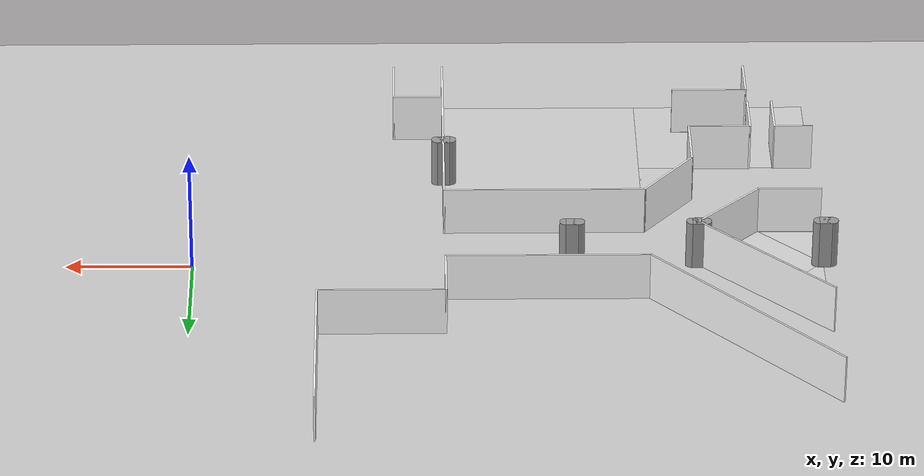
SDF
<sdf version="1.6">
 <world name="default">
  <model name="ground_plane">
   <static>1</static>
   <link name="link">
    <collision name="collision">
     <geometry><plane><normal>0 0 1</normal><size>100 100</size></plane></geometry>
     <surface><friction><ode><mu>100</mu><mu2>50</mu2></ode></friction></surface>
    </collision>
    <visual name="visual">
     <cast_shadows>0</cast_shadows>
     <geometry><plane><normal>0 0 1</normal><size>100 100</size></plane></geometry>
     <material>
      <script><uri>file://media/materials/scripts/gazebo.material</uri><name>Gazebo/Grey</name></script>
     </material>
    </visual>
   </link>
  </model>
  <model name="restroom_wall">
   <pose>-25 -15 0 0 -0 0</pose>
   <link name="Wall_11">
    <collision name="Wall_11_Collision">
     <geometry><box><size>4.15 0.15 4</size></box></geometry>
     <pose>0 0 2 0 -0 0</pose>
    </collision>
    <visual name="Wall_11_Visual">
     <pose>0 0 2 0 -0 0</pose>
     <geometry><box><size>4.15 0.15 4</size></box></geometry>
     <material>
      <script>
       <uri>file://media/materials/scripts/gray_tile_10.material</uri>
       <name>gray_tile_10/Diffuse</name>
      </script>
      <ambient>1 1 1 1</ambient>
     </material>
     <meta><layer>0</layer></meta>
    </visual>
    <pose>-19.9625 -2.01521 0 0 -0 -1.5708</pose>
   </link>
   <link name="Wall_13">
    <collision name="Wall_13_Collision">
     <geometry><box><size>4.15 0.15 4</size></box></geometry>
     <pose>0 0 2 0 -0 0</pose>
    </collision>
    <visual name="Wall_13_Visual">
     <pose>0 0 2 0 -0 0</pose>
     <geometry><box><size>4.15 0.15 4</size></box></geometry>
     <material>
      <script>
       <uri>file://media/materials/scripts/gray_tile_10.material</uri>
       <name>gray_tile_10/Diffuse</name>
      </script>
      <ambient>1 1 1 1</ambient>
     </material>
     <meta><layer>0</layer></meta>
    </visual>
    <pose>-19.9625 -8.01521 0 0 -0 1.5708</pose>
   </link>
   <link name="Wall_14">
    <collision name="Wall_14_Collision">
     <geometry><box><size>6.15 0.15 4</size></box></geometry>
     <pose>0 0 2 0 -0 0</pose>
    </collision>
    <visual name="Wall_14_Visual">
     <pose>0 0 2 0 -0 0</pose>
     <geometry><box><size>6.15 0.15 4</size></box></geometry>
     <material>
      <script>
       <uri>file://media/materials/scripts/gray_tile_10.material</uri>
       <name>gray_tile_10/Diffuse</name>
      </script>
      <ambient>1 1 1 1</ambient>
     </material>
     <meta><layer>0</layer></meta>
    </visual>
    <pose>-16.9625 -6.01521 0 0 -0 0</pose>
   </link>
   <link name="Wall_16">
    <collision name="Wall_16_Collision">
     <geometry><box><size>4.15 0.15 4</size></box></geometry>
     <pose>0 0 2 0 -0 0</pose>
    </collision>
    <visual name="Wall_16_Visual">
     <pose>0 0 2 0 -0 0</pose>
     <geometry><box><size>4.15 0.15 4</size></box></geometry>
     <material>
      <script>
       <uri>file://media/materials/scripts/gray_tile_10.material</uri>
       <name>gray_tile_10/Diffuse</name>
      </script>
      <ambient>1 1 1 1</ambient>
     </material>
     <meta><layer>0</layer></meta>
    </visual>
    <pose>7.0375 -5.01521 0 0 -0 0</pose>
   </link>
   <link name="Wall_17">
    <collision name="Wall_17_Collision">
     <geometry><box><size>5.15 0.15 4</size></box></geometry>
     <pose>0 0 2 0 -0 0</pose>
    </collision>
    <visual name="Wall_17_Visual">
     <pose>0 0 2 0 -0 0</pose>
     <geometry><box><size>5.15 0.15 4</size></box></geometry>
     <material>
      <script>
       <uri>file://media/materials/scripts/gray_tile_10.material</uri>
       <name>gray_tile_10/Diffuse</name>
      </script>
      <ambient>1 1 1 1</ambient>
     </material>
     <meta><layer>0</layer></meta>
    </visual>
    <pose>9.0375 -7.51521 0 0 -0 -1.5708</pose>
   </link>
   <link name="Wall_2">
    <pose>-19.9625 -0.015208 0 0 -0 0</pose>
    <visual name="Wall_2_Visual_0">
     <pose>-3.5375 0 2 0 -0 0</pose>
     <geometry><box><size>3.075 0.15 4</size></box></geometry>
     <material>
      <script>
       <uri>file://media/materials/scripts/gray_tile_10.material</uri>
       <name>gray_tile_10/Diffuse</name>
      </script>
      <ambient>1 1 1 1</ambient>
     </material>
     <meta><layer>0</layer></meta>
    </visual>
    <collision name="Wall_2_Collision_0">
     <geometry><box><size>3.075 0.15 4</size></box></geometry>
     <pose>-3.5375 0 2 0 -0 0</pose>
    </collision>
    <visual name="Wall_2_Visual_1">
     <pose>2.5375 0 2 0 -0 0</pose>
     <geometry><box><size>5.075 0.15 4</size></box></geometry>
     <material>
      <script>
       <uri>file://media/materials/scripts/gray_tile_10.material</uri>
       <name>gray_tile_10/Diffuse</name>
      </script>
      <ambient>1 1 1 1</ambient>
     </material>
     <meta><layer>0</layer></meta>
    </visual>
    <collision name="Wall_2_Collision_1">
     <geometry><box><size>5.075 0.15 4</size></box></geometry>
     <pose>2.5375 0 2 0 -0 0</pose>
    </collision>
   </link>
   <link name="Wall_3">
    <collision name="Wall_3_Collision">
     <geometry><box><size>5.15 0.15 4</size></box></geometry>
     <pose>0 0 2 0 -0 0</pose>
    </collision>
    <visual name="Wall_3_Visual">
     <pose>0 0 2 0 -0 0</pose>
     <geometry><box><size>5.15 0.15 4</size></box></geometry>
     <material>
      <script>
       <uri>file://media/materials/scripts/gray_tile_10.material</uri>
       <name>gray_tile_10/Diffuse</name>
      </script>
      <ambient>1 1 1 1</ambient>
     </material>
     <meta><layer>0</layer></meta>
    </visual>
    <pose>-14.9625 2.48479 0 0 -0 1.5708</pose>
   </link>
   <link name="Wall_4">
    <collision name="Wall_4_Collision">
     <geometry><box><size>6.55312 0.15 4</size></box></geometry>
     <pose>0 0 2 0 -0 0</pose>
    </collision>
    <visual name="Wall_4_Visual">
     <pose>0 0 2 0 -0 0</pose>
     <geometry><box><size>6.55312 0.15 4</size></box></geometry>
     <material>
      <script>
       <uri>file://media/materials/scripts/gray_tile_10.material</uri>
       <name>gray_tile_10/Diffuse</name>
      </script>
      <ambient>1 1 1 1</ambient>
     </material>
     <meta><layer>0</layer></meta>
    </visual>
    <pose>-12.9625 7.48479 0 0 -0 0.896055</pose>
   </link>
   <link name="Wall_5">
    <collision name="Wall_5_Collision">
     <geometry><box><size>16.15 0.15 4</size></box></geometry>
     <pose>0 0 2 0 -0 0</pose>
    </collision>
    <visual name="Wall_5_Visual">
     <pose>0 0 2 0 -0 0</pose>
     <geometry><box><size>16.15 0.15 4</size></box></geometry>
     <material>
      <script>
       <uri>file://media/materials/scripts/gray_tile_10.material</uri>
       <name>gray_tile_10/Diffuse</name>
      </script>
      <ambient>1 1 1 1</ambient>
     </material>
     <meta><layer>0</layer></meta>
    </visual>
    <pose>-2.9625 9.98479 0 0 -0 0</pose>
   </link>
   <link name="Wall_6">
    <collision name="Wall_6_Collision">
     <geometry><box><size>20.15 0.15 4</size></box></geometry>
     <pose>0 0 2 0 -0 0</pose>
    </collision>
    <visual name="Wall_6_Visual">
     <pose>0 0 2 0 -0 0</pose>
     <geometry><box><size>20.15 0.15 4</size></box></geometry>
     <material>
      <script>
       <uri>file://media/materials/scripts/gray_tile_10.material</uri>
       <name>gray_tile_10/Diffuse</name>
      </script>
      <ambient>1 1 1 1</ambient>
     </material>
     <meta><layer>0</layer></meta>
    </visual>
    <pose>5.0375 -0.015208 0 0 -0 -1.5708</pose>
   </link>
   <link name="Wall_9">
    <collision name="Wall_9_Collision">
     <geometry><box><size>4.15 0.15 4</size></box></geometry>
     <pose>0 0 2 0 -0 0</pose>
    </collision>
    <visual name="Wall_9_Visual">
     <pose>0 0 2 0 -0 0</pose>
     <geometry><box><size>4.15 0.15 4</size></box></geometry>
     <material>
      <script>
       <uri>file://media/materials/scripts/gray_tile_10.material</uri>
       <name>gray_tile_10/Diffuse</name>
      </script>
      <ambient>1 1 1 1</ambient>
     </material>
     <meta><layer>0</layer></meta>
    </visual>
    <pose>-21.9455 -2.01521 0 0 -0 -1.5708</pose>
   </link>
   <static>1</static>
  </model>
  <model name="pillar">
   <link name="link_0">
    <inertial>
     <mass>1</mass>
     <inertia>
      <ixx>0.166667</ixx>
      <ixy>0</ixy>
      <ixz>0</ixz>
      <iyy>0.166667</iyy>
      <iyz>0</iyz>
      <izz>0.166667</izz>
     </inertia>
    </inertial>
    <kinematic>1</kinematic>
    <visual name="visual">
     <geometry><box><size>1 1 4</size></box></geometry>
     <material>
      <lighting>1</lighting>
      <script><uri>file://media/materials/scripts/gazebo.material</uri><name>Gazebo/Grey</name></script>
      <shader type="pixel"><normal_map>__default__</normal_map></shader>
      <ambient>0.3 0.3 0.3 1</ambient>
      <diffuse>0.7 0.7 0.7 1</diffuse>
      <specular>0.01 0.01 0.01 1</specular>
      <emissive>0 0 0 1</emissive>
     </material>
    </visual>
    <collision name="collision">
     <geometry><box><size>1 1 4</size></box></geometry>
     <surface>
      <friction>
       <ode><mu>1</mu><mu2>1</mu2><fdir1>0 0 0</fdir1><slip1>0</slip1><slip2>0</slip2></ode>
       <torsional>
        <coefficient>1</coefficient>
        <patch_radius>0</patch_radius>
        <surface_radius>0</surface_radius>
        <use_patch_radius>1</use_patch_radius>
        <ode><slip>0</slip></ode>
       </torsional>
      </friction>
      <bounce><restitution_coefficient>0</restitution_coefficient><threshold>1e+06</threshold></bounce>
      <contact>
       <collide_without_contact>0</collide_without_contact>
       <collide_without_contact_bitmask>1</collide_without_contact_bitmask>
       <collide_bitmask>1</collide_bitmask>
       <ode>
        <soft_cfm>0</soft_cfm>
        <soft_erp>0.2</soft_erp>
        <kp>1e+13</kp>
        <kd>1</kd>
        <max_vel>0.01</max_vel>
        <min_depth>0</min_depth>
       </ode>
       <bullet>
        <split_impulse>1</split_impulse>
        <split_impulse_penetration_threshold>-0.01</split_impulse_penetration_threshold>
        <soft_cfm>0</soft_cfm>
        <soft_erp>0.2</soft_erp>
        <kp>1e+13</kp>
        <kd>1</kd>
       </bullet>
      </contact>
     </surface>
    </collision>
   </link>
   <link name="link_1">
    <inertial>
     <mass>1</mass>
     <inertia><ixx>0.145833</ixx><ixy>0</ixy><ixz>0</ixz><iyy>0.145833</iyy><iyz>0</iyz><izz>0.125</izz></inertia>
    </inertial>
    <pose>-0.5 0 0 0 -0 0</pose>
    <kinematic>1</kinematic>
    <visual name="visual">
     <geometry><cylinder><radius>0.5</radius><length>4</length></cylinder></geometry>
     <material>
      <lighting>1</lighting>
      <script><uri>file://media/materials/scripts/gazebo.material</uri><name>Gazebo/Grey</name></script>
      <shader type="pixel"><normal_map>__default__</normal_map></shader>
      <ambient>0.3 0.3 0.3 1</ambient>
      <diffuse>0.7 0.7 0.7 1</diffuse>
      <specular>0.01 0.01 0.01 1</specular>
      <emissive>0 0 0 1</emissive>
     </material>
    </visual>
    <collision name="collision">
     <geometry><cylinder><radius>0.5</radius><length>4</length></cylinder></geometry>
     <surface>
      <friction>
       <ode><mu>1</mu><mu2>1</mu2><fdir1>0 0 0</fdir1><slip1>0</slip1><slip2>0</slip2></ode>
       <torsional>
        <coefficient>1</coefficient>
        <patch_radius>0</patch_radius>
        <surface_radius>0</surface_radius>
        <use_patch_radius>1</use_patch_radius>
        <ode><slip>0</slip></ode>
       </torsional>
      </friction>
      <bounce><restitution_coefficient>0</restitution_coefficient><threshold>1e+06</threshold></bounce>
      <contact>
       <collide_without_contact>0</collide_without_contact>
       <collide_without_contact_bitmask>1</collide_without_contact_bitmask>
       <collide_bitmask>1</collide_bitmask>
       <ode>
        <soft_cfm>0</soft_cfm>
        <soft_erp>0.2</soft_erp>
        <kp>1e+13</kp>
        <kd>1</kd>
        <max_vel>0.01</max_vel>
        <min_depth>0</min_depth>
       </ode>
       <bullet>
        <split_impulse>1</split_impulse>
        <split_impulse_penetration_threshold>-0.01</split_impulse_penetration_threshold>
        <soft_cfm>0</soft_cfm>
        <soft_erp>0.2</soft_erp>
        <kp>1e+13</kp>
        <kd>1</kd>
       </bullet>
      </contact>
     </surface>
    </collision>
   </link>
   <link name="link_2">
    <inertial>
     <mass>1</mass>
     <inertia><ixx>0.145833</ixx><ixy>0</ixy><ixz>0</ixz><iyy>0.145833</iyy><iyz>0</iyz><izz>0.125</izz></inertia>
    </inertial>
    <pose>0.5 0 0 0 -0 0</pose>
    <kinematic>1</kinematic>
    <visual name="visual">
     <geometry><cylinder><radius>0.5</radius><length>4</length></cylinder></geometry>
     <material>
      <lighting>1</lighting>
      <script><uri>file://media/materials/scripts/gazebo.material</uri><name>Gazebo/Grey</name></script>
      <shader type="pixel"><normal_map>__default__</normal_map></shader>
      <ambient>0.3 0.3 0.3 1</ambient>
      <diffuse>0.7 0.7 0.7 1</diffuse>
      <specular>0.01 0.01 0.01 1</specular>
      <emissive>0 0 0 1</emissive>
     </material>
    </visual>
    <collision name="collision">
     <geometry><cylinder><radius>0.5</radius><length>4</length></cylinder></geometry>
     <surface>
      <friction>
       <ode><mu>1</mu><mu2>1</mu2><fdir1>0 0 0</fdir1><slip1>0</slip1><slip2>0</slip2></ode>
       <torsional>
        <coefficient>1</coefficient>
        <patch_radius>0</patch_radius>
        <surface_radius>0</surface_radius>
        <use_patch_radius>1</use_patch_radius>
        <ode><slip>0</slip></ode>
       </torsional>
      </friction>
      <bounce><restitution_coefficient>0</restitution_coefficient><threshold>1e+06</threshold></bounce>
      <contact>
       <collide_without_contact>0</collide_without_contact>
       <collide_without_contact_bitmask>1</collide_without_contact_bitmask>
       <collide_bitmask>1</collide_bitmask>
       <ode>
        <soft_cfm>0</soft_cfm>
        <soft_erp>0.2</soft_erp>
        <kp>1e+13</kp>
        <kd>1</kd>
        <max_vel>0.01</max_vel>
        <min_depth>0</min_depth>
       </ode>
       <bullet>
        <split_impulse>1</split_impulse>
        <split_impulse_penetration_threshold>-0.01</split_impulse_penetration_threshold>
        <soft_cfm>0</soft_cfm>
        <soft_erp>0.2</soft_erp>
        <kp>1e+13</kp>
        <kd>1</kd>
       </bullet>
      </contact>
     </surface>
    </collision>
   </link>
   <static>1</static>
   <pose>-20 -13 2 0 -0 0</pose>
  </model>
  <model name="pillar_clone_6_clone">
   <link name="link_0">
    <inertial>
     <mass>1</mass>
     <inertia>
      <ixx>0.166667</ixx>
      <ixy>0</ixy>
      <ixz>0</ixz>
      <iyy>0.166667</iyy>
      <iyz>0</iyz>
      <izz>0.166667</izz>
     </inertia>
    </inertial>
    <kinematic>1</kinematic>
    <visual name="visual">
     <geometry><box><size>1 1 4</size></box></geometry>
     <material>
      <lighting>1</lighting>
      <script><uri>file://media/materials/scripts/gazebo.material</uri><name>Gazebo/Grey</name></script>
      <shader type="pixel"><normal_map>__default__</normal_map></shader>
      <ambient>0.3 0.3 0.3 1</ambient>
      <diffuse>0.7 0.7 0.7 1</diffuse>
      <specular>0.01 0.01 0.01 1</specular>
      <emissive>0 0 0 1</emissive>
     </material>
    </visual>
    <collision name="collision">
     <geometry><box><size>1 1 4</size></box></geometry>
     <surface>
      <friction>
       <ode><mu>1</mu><mu2>1</mu2><fdir1>0 0 0</fdir1><slip1>0</slip1><slip2>0</slip2></ode>
       <torsional>
        <coefficient>1</coefficient>
        <patch_radius>0</patch_radius>
        <surface_radius>0</surface_radius>
        <use_patch_radius>1</use_patch_radius>
        <ode><slip>0</slip></ode>
       </torsional>
      </friction>
      <bounce><restitution_coefficient>0</restitution_coefficient><threshold>1e+06</threshold></bounce>
      <contact>
       <collide_without_contact>0</collide_without_contact>
       <collide_without_contact_bitmask>1</collide_without_contact_bitmask>
       <collide_bitmask>1</collide_bitmask>
       <ode>
        <soft_cfm>0</soft_cfm>
        <soft_erp>0.2</soft_erp>
        <kp>1e+13</kp>
        <kd>1</kd>
        <max_vel>0.01</max_vel>
        <min_depth>0</min_depth>
       </ode>
       <bullet>
        <split_impulse>1</split_impulse>
        <split_impulse_penetration_threshold>-0.01</split_impulse_penetration_threshold>
        <soft_cfm>0</soft_cfm>
        <soft_erp>0.2</soft_erp>
        <kp>1e+13</kp>
        <kd>1</kd>
       </bullet>
      </contact>
     </surface>
    </collision>
   </link>
   <link name="link_1">
    <inertial>
     <mass>1</mass>
     <inertia><ixx>0.145833</ixx><ixy>0</ixy><ixz>0</ixz><iyy>0.145833</iyy><iyz>0</iyz><izz>0.125</izz></inertia>
    </inertial>
    <pose>-0.5 0 0 0 -0 0</pose>
    <kinematic>1</kinematic>
    <visual name="visual">
     <geometry><cylinder><radius>0.5</radius><length>4</length></cylinder></geometry>
     <material>
      <lighting>1</lighting>
      <script><uri>file://media/materials/scripts/gazebo.material</uri><name>Gazebo/Grey</name></script>
      <shader type="pixel"><normal_map>__default__</normal_map></shader>
      <ambient>0.3 0.3 0.3 1</ambient>
      <diffuse>0.7 0.7 0.7 1</diffuse>
      <specular>0.01 0.01 0.01 1</specular>
      <emissive>0 0 0 1</emissive>
     </material>
    </visual>
    <collision name="collision">
     <geometry><cylinder><radius>0.5</radius><length>4</length></cylinder></geometry>
     <surface>
      <friction>
       <ode><mu>1</mu><mu2>1</mu2><fdir1>0 0 0</fdir1><slip1>0</slip1><slip2>0</slip2></ode>
       <torsional>
        <coefficient>1</coefficient>
        <patch_radius>0</patch_radius>
        <surface_radius>0</surface_radius>
        <use_patch_radius>1</use_patch_radius>
        <ode><slip>0</slip></ode>
       </torsional>
      </friction>
      <bounce><restitution_coefficient>0</restitution_coefficient><threshold>1e+06</threshold></bounce>
      <contact>
       <collide_without_contact>0</collide_without_contact>
       <collide_without_contact_bitmask>1</collide_without_contact_bitmask>
       <collide_bitmask>1</collide_bitmask>
       <ode>
        <soft_cfm>0</soft_cfm>
        <soft_erp>0.2</soft_erp>
        <kp>1e+13</kp>
        <kd>1</kd>
        <max_vel>0.01</max_vel>
        <min_depth>0</min_depth>
       </ode>
       <bullet>
        <split_impulse>1</split_impulse>
        <split_impulse_penetration_threshold>-0.01</split_impulse_penetration_threshold>
        <soft_cfm>0</soft_cfm>
        <soft_erp>0.2</soft_erp>
        <kp>1e+13</kp>
        <kd>1</kd>
       </bullet>
      </contact>
     </surface>
    </collision>
   </link>
   <link name="link_2">
    <inertial>
     <mass>1</mass>
     <inertia><ixx>0.145833</ixx><ixy>0</ixy><ixz>0</ixz><iyy>0.145833</iyy><iyz>0</iyz><izz>0.125</izz></inertia>
    </inertial>
    <pose>0.5 0 0 0 -0 0</pose>
    <kinematic>1</kinematic>
    <visual name="visual">
     <geometry><cylinder><radius>0.5</radius><length>4</length></cylinder></geometry>
     <material>
      <lighting>1</lighting>
      <script><uri>file://media/materials/scripts/gazebo.material</uri><name>Gazebo/Grey</name></script>
      <shader type="pixel"><normal_map>__default__</normal_map></shader>
      <ambient>0.3 0.3 0.3 1</ambient>
      <diffuse>0.7 0.7 0.7 1</diffuse>
      <specular>0.01 0.01 0.01 1</specular>
      <emissive>0 0 0 1</emissive>
     </material>
    </visual>
    <collision name="collision">
     <geometry><cylinder><radius>0.5</radius><length>4</length></cylinder></geometry>
     <surface>
      <friction>
       <ode><mu>1</mu><mu2>1</mu2><fdir1>0 0 0</fdir1><slip1>0</slip1><slip2>0</slip2></ode>
       <torsional>
        <coefficient>1</coefficient>
        <patch_radius>0</patch_radius>
        <surface_radius>0</surface_radius>
        <use_patch_radius>1</use_patch_radius>
        <ode><slip>0</slip></ode>
       </torsional>
      </friction>
      <bounce><restitution_coefficient>0</restitution_coefficient><threshold>1e+06</threshold></bounce>
      <contact>
       <collide_without_contact>0</collide_without_contact>
       <collide_without_contact_bitmask>1</collide_without_contact_bitmask>
       <collide_bitmask>1</collide_bitmask>
       <ode>
        <soft_cfm>0</soft_cfm>
        <soft_erp>0.2</soft_erp>
        <kp>1e+13</kp>
        <kd>1</kd>
        <max_vel>0.01</max_vel>
        <min_depth>0</min_depth>
       </ode>
       <bullet>
        <split_impulse>1</split_impulse>
        <split_impulse_penetration_threshold>-0.01</split_impulse_penetration_threshold>
        <soft_cfm>0</soft_cfm>
        <soft_erp>0.2</soft_erp>
        <kp>1e+13</kp>
        <kd>1</kd>
       </bullet>
      </contact>
     </surface>
    </collision>
   </link>
   <static>1</static>
   <pose>-30 0 2 0 -0 0</pose>
  </model>
  <model name="pillar_clone_6_clone_0">
   <link name="link_0">
    <inertial>
     <mass>1</mass>
     <inertia>
      <ixx>0.166667</ixx>
      <ixy>0</ixy>
      <ixz>0</ixz>
      <iyy>0.166667</iyy>
      <iyz>0</iyz>
      <izz>0.166667</izz>
     </inertia>
    </inertial>
    <kinematic>1</kinematic>
    <visual name="visual">
     <geometry><box><size>1 1 4</size></box></geometry>
     <material>
      <lighting>1</lighting>
      <script><uri>file://media/materials/scripts/gazebo.material</uri><name>Gazebo/Grey</name></script>
      <shader type="pixel"><normal_map>__default__</normal_map></shader>
      <ambient>0.3 0.3 0.3 1</ambient>
      <diffuse>0.7 0.7 0.7 1</diffuse>
      <specular>0.01 0.01 0.01 1</specular>
      <emissive>0 0 0 1</emissive>
     </material>
    </visual>
    <collision name="collision">
     <geometry><box><size>1 1 4</size></box></geometry>
     <surface>
      <friction>
       <ode><mu>1</mu><mu2>1</mu2><fdir1>0 0 0</fdir1><slip1>0</slip1><slip2>0</slip2></ode>
       <torsional>
        <coefficient>1</coefficient>
        <patch_radius>0</patch_radius>
        <surface_radius>0</surface_radius>
        <use_patch_radius>1</use_patch_radius>
        <ode><slip>0</slip></ode>
       </torsional>
      </friction>
      <bounce><restitution_coefficient>0</restitution_coefficient><threshold>1e+06</threshold></bounce>
      <contact>
       <collide_without_contact>0</collide_without_contact>
       <collide_without_contact_bitmask>1</collide_without_contact_bitmask>
       <collide_bitmask>1</collide_bitmask>
       <ode>
        <soft_cfm>0</soft_cfm>
        <soft_erp>0.2</soft_erp>
        <kp>1e+13</kp>
        <kd>1</kd>
        <max_vel>0.01</max_vel>
        <min_depth>0</min_depth>
       </ode>
       <bullet>
        <split_impulse>1</split_impulse>
        <split_impulse_penetration_threshold>-0.01</split_impulse_penetration_threshold>
        <soft_cfm>0</soft_cfm>
        <soft_erp>0.2</soft_erp>
        <kp>1e+13</kp>
        <kd>1</kd>
       </bullet>
      </contact>
     </surface>
    </collision>
   </link>
   <link name="link_1">
    <inertial>
     <mass>1</mass>
     <inertia><ixx>0.145833</ixx><ixy>0</ixy><ixz>0</ixz><iyy>0.145833</iyy><iyz>0</iyz><izz>0.125</izz></inertia>
    </inertial>
    <pose>-0.5 0 0 0 -0 0</pose>
    <kinematic>1</kinematic>
    <visual name="visual">
     <geometry><cylinder><radius>0.5</radius><length>4</length></cylinder></geometry>
     <material>
      <lighting>1</lighting>
      <script><uri>file://media/materials/scripts/gazebo.material</uri><name>Gazebo/Grey</name></script>
      <shader type="pixel"><normal_map>__default__</normal_map></shader>
      <ambient>0.3 0.3 0.3 1</ambient>
      <diffuse>0.7 0.7 0.7 1</diffuse>
      <specular>0.01 0.01 0.01 1</specular>
      <emissive>0 0 0 1</emissive>
     </material>
    </visual>
    <collision name="collision">
     <geometry><cylinder><radius>0.5</radius><length>4</length></cylinder></geometry>
     <surface>
      <friction>
       <ode><mu>1</mu><mu2>1</mu2><fdir1>0 0 0</fdir1><slip1>0</slip1><slip2>0</slip2></ode>
       <torsional>
        <coefficient>1</coefficient>
        <patch_radius>0</patch_radius>
        <surface_radius>0</surface_radius>
        <use_patch_radius>1</use_patch_radius>
        <ode><slip>0</slip></ode>
       </torsional>
      </friction>
      <bounce><restitution_coefficient>0</restitution_coefficient><threshold>1e+06</threshold></bounce>
      <contact>
       <collide_without_contact>0</collide_without_contact>
       <collide_without_contact_bitmask>1</collide_without_contact_bitmask>
       <collide_bitmask>1</collide_bitmask>
       <ode>
        <soft_cfm>0</soft_cfm>
        <soft_erp>0.2</soft_erp>
        <kp>1e+13</kp>
        <kd>1</kd>
        <max_vel>0.01</max_vel>
        <min_depth>0</min_depth>
       </ode>
       <bullet>
        <split_impulse>1</split_impulse>
        <split_impulse_penetration_threshold>-0.01</split_impulse_penetration_threshold>
        <soft_cfm>0</soft_cfm>
        <soft_erp>0.2</soft_erp>
        <kp>1e+13</kp>
        <kd>1</kd>
       </bullet>
      </contact>
     </surface>
    </collision>
   </link>
   <link name="link_2">
    <inertial>
     <mass>1</mass>
     <inertia><ixx>0.145833</ixx><ixy>0</ixy><ixz>0</ixz><iyy>0.145833</iyy><iyz>0</iyz><izz>0.125</izz></inertia>
    </inertial>
    <pose>0.5 0 0 0 -0 0</pose>
    <kinematic>1</kinematic>
    <visual name="visual">
     <geometry><cylinder><radius>0.5</radius><length>4</length></cylinder></geometry>
     <material>
      <lighting>1</lighting>
      <script><uri>file://media/materials/scripts/gazebo.material</uri><name>Gazebo/Grey</name></script>
      <shader type="pixel"><normal_map>__default__</normal_map></shader>
      <ambient>0.3 0.3 0.3 1</ambient>
      <diffuse>0.7 0.7 0.7 1</diffuse>
      <specular>0.01 0.01 0.01 1</specular>
      <emissive>0 0 0 1</emissive>
     </material>
    </visual>
    <collision name="collision">
     <geometry><cylinder><radius>0.5</radius><length>4</length></cylinder></geometry>
     <surface>
      <friction>
       <ode><mu>1</mu><mu2>1</mu2><fdir1>0 0 0</fdir1><slip1>0</slip1><slip2>0</slip2></ode>
       <torsional>
        <coefficient>1</coefficient>
        <patch_radius>0</patch_radius>
        <surface_radius>0</surface_radius>
        <use_patch_radius>1</use_patch_radius>
        <ode><slip>0</slip></ode>
       </torsional>
      </friction>
      <bounce><restitution_coefficient>0</restitution_coefficient><threshold>1e+06</threshold></bounce>
      <contact>
       <collide_without_contact>0</collide_without_contact>
       <collide_without_contact_bitmask>1</collide_without_contact_bitmask>
       <collide_bitmask>1</collide_bitmask>
       <ode>
        <soft_cfm>0</soft_cfm>
        <soft_erp>0.2</soft_erp>
        <kp>1e+13</kp>
        <kd>1</kd>
        <max_vel>0.01</max_vel>
        <min_depth>0</min_depth>
       </ode>
       <bullet>
        <split_impulse>1</split_impulse>
        <split_impulse_penetration_threshold>-0.01</split_impulse_penetration_threshold>
        <soft_cfm>0</soft_cfm>
        <soft_erp>0.2</soft_erp>
        <kp>1e+13</kp>
        <kd>1</kd>
       </bullet>
      </contact>
     </surface>
    </collision>
   </link>
   <static>1</static>
   <pose>-40 0 2 0 -0 0</pose>
  </model>
  <model name="pillar_clone_6_clone_8">
   <link name="link_0">
    <inertial>
     <mass>1</mass>
     <inertia>
      <ixx>0.166667</ixx>
      <ixy>0</ixy>
      <ixz>0</ixz>
      <iyy>0.166667</iyy>
      <iyz>0</iyz>
      <izz>0.166667</izz>
     </inertia>
    </inertial>
    <kinematic>1</kinematic>
    <visual name="visual">
     <geometry><box><size>1 1 4</size></box></geometry>
     <material>
      <lighting>1</lighting>
      <script><uri>file://media/materials/scripts/gazebo.material</uri><name>Gazebo/Grey</name></script>
      <shader type="pixel"><normal_map>__default__</normal_map></shader>
      <ambient>0.3 0.3 0.3 1</ambient>
      <diffuse>0.7 0.7 0.7 1</diffuse>
      <specular>0.01 0.01 0.01 1</specular>
      <emissive>0 0 0 1</emissive>
     </material>
    </visual>
    <collision name="collision">
     <geometry><box><size>1 1 4</size></box></geometry>
     <surface>
      <friction>
       <ode><mu>1</mu><mu2>1</mu2><fdir1>0 0 0</fdir1><slip1>0</slip1><slip2>0</slip2></ode>
       <torsional>
        <coefficient>1</coefficient>
        <patch_radius>0</patch_radius>
        <surface_radius>0</surface_radius>
        <use_patch_radius>1</use_patch_radius>
        <ode><slip>0</slip></ode>
       </torsional>
      </friction>
      <bounce><restitution_coefficient>0</restitution_coefficient><threshold>1e+06</threshold></bounce>
      <contact>
       <collide_without_contact>0</collide_without_contact>
       <collide_without_contact_bitmask>1</collide_without_contact_bitmask>
       <collide_bitmask>1</collide_bitmask>
       <ode>
        <soft_cfm>0</soft_cfm>
        <soft_erp>0.2</soft_erp>
        <kp>1e+13</kp>
        <kd>1</kd>
        <max_vel>0.01</max_vel>
        <min_depth>0</min_depth>
       </ode>
       <bullet>
        <split_impulse>1</split_impulse>
        <split_impulse_penetration_threshold>-0.01</split_impulse_penetration_threshold>
        <soft_cfm>0</soft_cfm>
        <soft_erp>0.2</soft_erp>
        <kp>1e+13</kp>
        <kd>1</kd>
       </bullet>
      </contact>
     </surface>
    </collision>
   </link>
   <link name="link_1">
    <inertial>
     <mass>1</mass>
     <inertia><ixx>0.145833</ixx><ixy>0</ixy><ixz>0</ixz><iyy>0.145833</iyy><iyz>0</iyz><izz>0.125</izz></inertia>
    </inertial>
    <pose>-0.5 0 0 0 -0 0</pose>
    <kinematic>1</kinematic>
    <visual name="visual">
     <geometry><cylinder><radius>0.5</radius><length>4</length></cylinder></geometry>
     <material>
      <lighting>1</lighting>
      <script><uri>file://media/materials/scripts/gazebo.material</uri><name>Gazebo/Grey</name></script>
      <shader type="pixel"><normal_map>__default__</normal_map></shader>
      <ambient>0.3 0.3 0.3 1</ambient>
      <diffuse>0.7 0.7 0.7 1</diffuse>
      <specular>0.01 0.01 0.01 1</specular>
      <emissive>0 0 0 1</emissive>
     </material>
    </visual>
    <collision name="collision">
     <geometry><cylinder><radius>0.5</radius><length>4</length></cylinder></geometry>
     <surface>
      <friction>
       <ode><mu>1</mu><mu2>1</mu2><fdir1>0 0 0</fdir1><slip1>0</slip1><slip2>0</slip2></ode>
       <torsional>
        <coefficient>1</coefficient>
        <patch_radius>0</patch_radius>
        <surface_radius>0</surface_radius>
        <use_patch_radius>1</use_patch_radius>
        <ode><slip>0</slip></ode>
       </torsional>
      </friction>
      <bounce><restitution_coefficient>0</restitution_coefficient><threshold>1e+06</threshold></bounce>
      <contact>
       <collide_without_contact>0</collide_without_contact>
       <collide_without_contact_bitmask>1</collide_without_contact_bitmask>
       <collide_bitmask>1</collide_bitmask>
       <ode>
        <soft_cfm>0</soft_cfm>
        <soft_erp>0.2</soft_erp>
        <kp>1e+13</kp>
        <kd>1</kd>
        <max_vel>0.01</max_vel>
        <min_depth>0</min_depth>
       </ode>
       <bullet>
        <split_impulse>1</split_impulse>
        <split_impulse_penetration_threshold>-0.01</split_impulse_penetration_threshold>
        <soft_cfm>0</soft_cfm>
        <soft_erp>0.2</soft_erp>
        <kp>1e+13</kp>
        <kd>1</kd>
       </bullet>
      </contact>
     </surface>
    </collision>
   </link>
   <link name="link_2">
    <inertial>
     <mass>1</mass>
     <inertia><ixx>0.145833</ixx><ixy>0</ixy><ixz>0</ixz><iyy>0.145833</iyy><iyz>0</iyz><izz>0.125</izz></inertia>
    </inertial>
    <pose>0.5 0 0 0 -0 0</pose>
    <kinematic>1</kinematic>
    <visual name="visual">
     <geometry><cylinder><radius>0.5</radius><length>4</length></cylinder></geometry>
     <material>
      <lighting>1</lighting>
      <script><uri>file://media/materials/scripts/gazebo.material</uri><name>Gazebo/Grey</name></script>
      <shader type="pixel"><normal_map>__default__</normal_map></shader>
      <ambient>0.3 0.3 0.3 1</ambient>
      <diffuse>0.7 0.7 0.7 1</diffuse>
      <specular>0.01 0.01 0.01 1</specular>
      <emissive>0 0 0 1</emissive>
     </material>
    </visual>
    <collision name="collision">
     <geometry><cylinder><radius>0.5</radius><length>4</length></cylinder></geometry>
     <surface>
      <friction>
       <ode><mu>1</mu><mu2>1</mu2><fdir1>0 0 0</fdir1><slip1>0</slip1><slip2>0</slip2></ode>
       <torsional>
        <coefficient>1</coefficient>
        <patch_radius>0</patch_radius>
        <surface_radius>0</surface_radius>
        <use_patch_radius>1</use_patch_radius>
        <ode><slip>0</slip></ode>
       </torsional>
      </friction>
      <bounce><restitution_coefficient>0</restitution_coefficient><threshold>1e+06</threshold></bounce>
      <contact>
       <collide_without_contact>0</collide_without_contact>
       <collide_without_contact_bitmask>1</collide_without_contact_bitmask>
       <collide_bitmask>1</collide_bitmask>
       <ode>
        <soft_cfm>0</soft_cfm>
        <soft_erp>0.2</soft_erp>
        <kp>1e+13</kp>
        <kd>1</kd>
        <max_vel>0.01</max_vel>
        <min_depth>0</min_depth>
       </ode>
       <bullet>
        <split_impulse>1</split_impulse>
        <split_impulse_penetration_threshold>-0.01</split_impulse_penetration_threshold>
        <soft_cfm>0</soft_cfm>
        <soft_erp>0.2</soft_erp>
        <kp>1e+13</kp>
        <kd>1</kd>
       </bullet>
      </contact>
     </surface>
    </collision>
   </link>
   <static>1</static>
   <pose>-50 0 2 0 -0 0</pose>
  </model>
  <model name="wall_others_1">
   <pose>-25.032 9.97887 0 0 -0 0</pose>
   <link name="Wall_11">
    <collision name="Wall_11_Collision">
     <geometry><box><size>20.6683 0.15 4</size></box></geometry>
     <pose>0 0 2 0 -0 0</pose>
    </collision>
    <visual name="Wall_11_Visual">
     <pose>0 0 2 0 -0 0</pose>
     <geometry><box><size>20.6683 0.15 4</size></box></geometry>
     <material>
      <script>
       <uri>file://media/materials/scripts/gray_tile_10.material</uri>
       <name>gray_tile_10/Diffuse</name>
      </script>
      <ambient>1 1 1 1</ambient>
     </material>
     <meta><layer>0</layer></meta>
    </visual>
    <pose>-17.947 2.51553 0 0 -0 -0.819867</pose>
   </link>
   <link name="Wall_12">
    <collision name="Wall_12_Collision">
     <geometry><box><size>16.15 0.15 4</size></box></geometry>
     <pose>0 0 2 0 -0 0</pose>
    </collision>
    <visual name="Wall_12_Visual">
     <pose>0 0 2 0 -0 0</pose>
     <geometry><box><size>16.15 0.15 4</size></box></geometry>
     <material>
      <script>
       <uri>file://media/materials/scripts/gray_tile_10.material</uri>
       <name>gray_tile_10/Diffuse</name>
      </script>
      <ambient>1 1 1 1</ambient>
     </material>
     <meta><layer>0</layer></meta>
    </visual>
    <pose>-2.94697 -4.98447 0 0 -0 0</pose>
   </link>
   <link name="Wall_13">
    <collision name="Wall_13_Collision">
     <geometry><box><size>5.15 0.15 4</size></box></geometry>
     <pose>0 0 2 0 -0 0</pose>
    </collision>
    <visual name="Wall_13_Visual">
     <pose>0 0 2 0 -0 0</pose>
     <geometry><box><size>5.15 0.15 4</size></box></geometry>
     <material>
      <script>
       <uri>file://media/materials/scripts/gray_tile_10.material</uri>
       <name>gray_tile_10/Diffuse</name>
      </script>
      <ambient>1 1 1 1</ambient>
     </material>
     <meta><layer>0</layer></meta>
    </visual>
    <pose>5.05303 -2.48447 0 0 -0 1.5708</pose>
   </link>
   <link name="Wall_14">
    <collision name="Wall_14_Collision">
     <geometry><box><size>10.15 0.15 4</size></box></geometry>
     <pose>0 0 2 0 -0 0</pose>
    </collision>
    <visual name="Wall_14_Visual">
     <pose>0 0 2 0 -0 0</pose>
     <geometry><box><size>10.15 0.15 4</size></box></geometry>
     <material>
      <script>
       <uri>file://media/materials/scripts/gray_tile_10.material</uri>
       <name>gray_tile_10/Diffuse</name>
      </script>
      <ambient>1 1 1 1</ambient>
     </material>
     <meta><layer>0</layer></meta>
    </visual>
    <pose>10.053 0.015533 0 0 -0 0</pose>
   </link>
   <link name="Wall_16">
    <collision name="Wall_16_Collision">
     <geometry><box><size>15.15 0.15 4</size></box></geometry>
     <pose>0 0 2 0 -0 0</pose>
    </collision>
    <visual name="Wall_16_Visual">
     <pose>0 0 2 0 -0 0</pose>
     <geometry><box><size>15.15 0.15 4</size></box></geometry>
     <material>
      <script>
       <uri>file://media/materials/scripts/gray_tile_10.material</uri>
       <name>gray_tile_10/Diffuse</name>
      </script>
      <ambient>1 1 1 1</ambient>
     </material>
     <meta><layer>0</layer></meta>
    </visual>
    <pose>15.053 7.51553 0 0 -0 1.5708</pose>
   </link>
   <link name="Wall_19">
    <collision name="Wall_19_Collision">
     <geometry><box><size>14.2921 0.15 4</size></box></geometry>
     <pose>0 0 2 0 -0 0</pose>
    </collision>
    <visual name="Wall_19_Visual">
     <pose>0 0 2 0 -0 0</pose>
     <geometry><box><size>14.2921 0.15 4</size></box></geometry>
     <material>
      <script>
       <uri>file://media/materials/scripts/gray_tile_10.material</uri>
       <name>gray_tile_10/Diffuse</name>
      </script>
      <ambient>1 1 1 1</ambient>
     </material>
     <meta><layer>0</layer></meta>
    </visual>
    <pose>-19.947 -4.98447 0 0 -0 -0.785398</pose>
   </link>
   <link name="Wall_20">
    <collision name="Wall_20_Collision">
     <geometry><box><size>7.22107 0.15 4</size></box></geometry>
     <pose>0 0 2 0 -0 0</pose>
    </collision>
    <visual name="Wall_20_Visual">
     <pose>0 0 2 0 -0 0</pose>
     <geometry><box><size>7.22107 0.15 4</size></box></geometry>
     <material>
      <script>
       <uri>file://media/materials/scripts/gray_tile_10.material</uri>
       <name>gray_tile_10/Diffuse</name>
      </script>
      <ambient>1 1 1 1</ambient>
     </material>
     <meta><layer>0</layer></meta>
    </visual>
    <pose>-17.447 -12.4845 0 0 -0 -2.35619</pose>
   </link>
   <link name="Wall_21">
    <collision name="Wall_21_Collision">
     <geometry><box><size>5.15 0.15 4</size></box></geometry>
     <pose>0 0 2 0 -0 0</pose>
    </collision>
    <visual name="Wall_21_Visual">
     <pose>0 0 2 0 -0 0</pose>
     <geometry><box><size>5.15 0.15 4</size></box></geometry>
     <material>
      <script>
       <uri>file://media/materials/scripts/gray_tile_10.material</uri>
       <name>gray_tile_10/Diffuse</name>
      </script>
      <ambient>1 1 1 1</ambient>
     </material>
     <meta><layer>0</layer></meta>
    </visual>
    <pose>-22.447 -14.9845 0 0 -0 3.14159</pose>
   </link>
   <static>1</static>
  </model>
  <model name="restroom_ceiling">
   <link name="link_0">
    <pose>4.53586 0.885028 0 0 -0 0</pose>
    <gravity>0</gravity>
    <visual name="visual">
     <geometry><box><size>16 20 0.01</size></box></geometry>
     <material>
      <lighting>1</lighting>
      <script><uri>file://media/materials/scripts/gazebo.material</uri><name>Gazebo/White</name></script>
      <shader type="pixel"><normal_map>__default__</normal_map></shader>
     </material>
     <transparency>0.7</transparency>
    </visual>
   </link>
   <link name="link_1">
    <pose>14.4946 -6.61497 0 0 -0 0</pose>
    <gravity>0</gravity>
    <visual name="visual">
     <geometry><box><size>4 5 0.01</size></box></geometry>
     <material>
      <lighting>1</lighting>
      <script><uri>file://media/materials/scripts/gazebo.material</uri><name>Gazebo/White</name></script>
      <shader type="pixel"><normal_map>__default__</normal_map></shader>
     </material>
     <transparency>0.7</transparency>
    </visual>
   </link>
   <link name="link_2">
    <pose>-3.10214 6.45989 0 0 0 -0.672873</pose>
    <gravity>0</gravity>
    <visual name="visual">
     <geometry><box><size>6 6.5 0.01</size></box></geometry>
     <material>
      <lighting>1</lighting>
      <script><uri>file://media/materials/scripts/gazebo.material</uri><name>Gazebo/White</name></script>
      <shader type="pixel"><normal_map>__default__</normal_map></shader>
     </material>
     <transparency>0.7</transparency>
    </visual>
   </link>
   <link name="link_3">
    <pose>-5.46414 3.38503 0 0 -0 0</pose>
    <gravity>0</gravity>
    <visual name="visual">
     <geometry><box><size>4 5 0.01</size></box></geometry>
     <material>
      <lighting>1</lighting>
      <script><uri>file://media/materials/scripts/gazebo.material</uri><name>Gazebo/White</name></script>
      <shader type="pixel"><normal_map>__default__</normal_map></shader>
     </material>
     <transparency>0.7</transparency>
    </visual>
   </link>
   <link name="link_4">
    <pose>-10.4641 -4.11497 0 0 -0 0</pose>
    <gravity>0</gravity>
    <visual name="visual">
     <geometry><box><size>14 10 0.01</size></box></geometry>
     <material>
      <lighting>1</lighting>
      <script><uri>file://media/materials/scripts/gazebo.material</uri><name>Gazebo/White</name></script>
      <shader type="pixel"><normal_map>__default__</normal_map></shader>
     </material>
     <transparency>0.7</transparency>
    </visual>
   </link>
   <static>1</static>
   <pose>-32.4866 -15.9066 0.02 0 -0 0</pose>
  </model>
  <model name="ceiling_1">
   <link name="link_5">
    <pose>3.11596 -5.51023 0 0 0 -0.785097</pose>
    <gravity>0</gravity>
    <visual name="visual">
     <geometry><box><size>7 7 0.01</size></box></geometry>
     <material>
      <lighting>1</lighting>
      <script><uri>file://media/materials/scripts/gazebo.material</uri><name>Gazebo/White</name></script>
      <shader type="pixel"><normal_map>__default__</normal_map></shader>
     </material>
     <transparency>0.5</transparency>
    </visual>
   </link>
   <link name="link_10">
    <pose>-0.386639 -0.016782 0 0 -0 0</pose>
    <gravity>0</gravity>
    <visual name="visual">
     <geometry><box><size>1.5 1.5 0.01</size></box></geometry>
     <material>
      <lighting>1</lighting>
      <script><uri>file://media/materials/scripts/gazebo.material</uri><name>Gazebo/White</name></script>
      <shader type="pixel"><normal_map>__default__</normal_map></shader>
     </material>
     <transparency>0.5</transparency>
    </visual>
   </link>
   <link name="link_11">
    <pose>-1.35984 3.49074 0 0 0 -0.780056</pose>
    <gravity>0</gravity>
    <visual name="visual">
     <geometry><box><size>1 0.6 0.01</size></box></geometry>
     <material>
      <lighting>1</lighting>
      <script><uri>file://media/materials/scripts/gazebo.material</uri><name>Gazebo/White</name></script>
      <shader type="pixel"><normal_map>__default__</normal_map></shader>
     </material>
     <transparency>0.5</transparency>
    </visual>
   </link>
   <link name="link_12">
    <pose>-1.66354 4.03062 0 0 -0 0</pose>
    <gravity>0</gravity>
    <visual name="visual">
     <geometry><box><size>0.300606 0.556629 0.01</size></box></geometry>
     <material>
      <lighting>1</lighting>
      <script><uri>file://media/materials/scripts/gazebo.material</uri><name>Gazebo/White</name></script>
      <shader type="pixel"><normal_map>__default__</normal_map></shader>
     </material>
     <transparency>0.5</transparency>
    </visual>
   </link>
   <link name="link_6">
    <pose>0.643062 -5.50815 0 0 -0 0</pose>
    <gravity>0</gravity>
    <visual name="visual">
     <geometry><box><size>5 10 0.01</size></box></geometry>
     <material>
      <lighting>1</lighting>
      <script><uri>file://media/materials/scripts/gazebo.material</uri><name>Gazebo/White</name></script>
      <shader type="pixel"><normal_map>__default__</normal_map></shader>
     </material>
     <transparency>0.5</transparency>
    </visual>
   </link>
   <link name="link_7">
    <pose>0.729351 1.24475 0 0 -0 0.7854</pose>
    <gravity>0</gravity>
    <visual name="visual">
     <geometry><box><size>1 6 0.01</size></box></geometry>
     <material>
      <lighting>1</lighting>
      <script><uri>file://media/materials/scripts/gazebo.material</uri><name>Gazebo/White</name></script>
      <shader type="pixel"><normal_map>__default__</normal_map></shader>
     </material>
     <transparency>0.5</transparency>
    </visual>
   </link>
   <link name="link_8">
    <pose>-1.35694 1.49185 0 0 -0 0</pose>
    <gravity>0</gravity>
    <visual name="visual">
     <geometry><box><size>1 4 0.01</size></box></geometry>
     <material>
      <lighting>1</lighting>
      <script><uri>file://media/materials/scripts/gazebo.material</uri><name>Gazebo/White</name></script>
      <shader type="pixel"><normal_map>__default__</normal_map></shader>
     </material>
     <transparency>0.5</transparency>
    </visual>
   </link>
   <link name="link_9">
    <pose>0.278564 0.777217 0 0 -0 0.7584</pose>
    <gravity>0</gravity>
    <visual name="visual">
     <geometry><box><size>2 4 0.01</size></box></geometry>
     <material>
      <lighting>1</lighting>
      <script><uri>file://media/materials/scripts/gazebo.material</uri><name>Gazebo/White</name></script>
      <shader type="pixel"><normal_map>__default__</normal_map></shader>
     </material>
     <transparency>0.5</transparency>
    </visual>
   </link>
   <static>1</static>
   <pose>-48.0742 5.43132 0.02 0 -0 0</pose>
  </model>
 </world>
</sdf>
